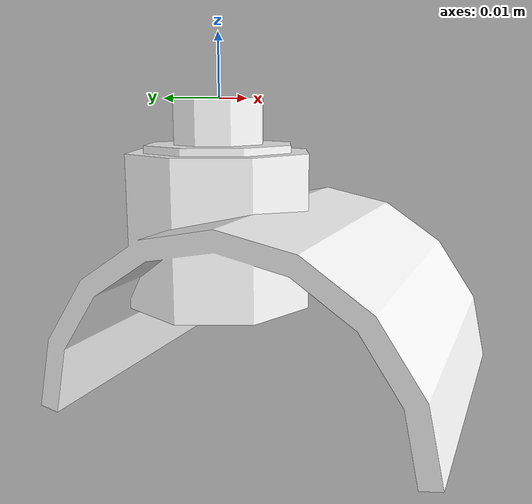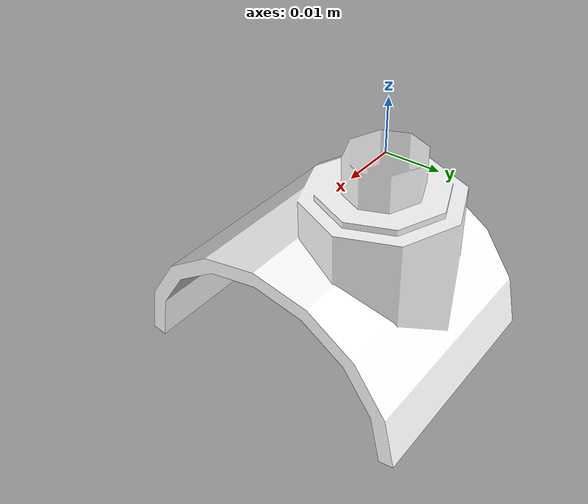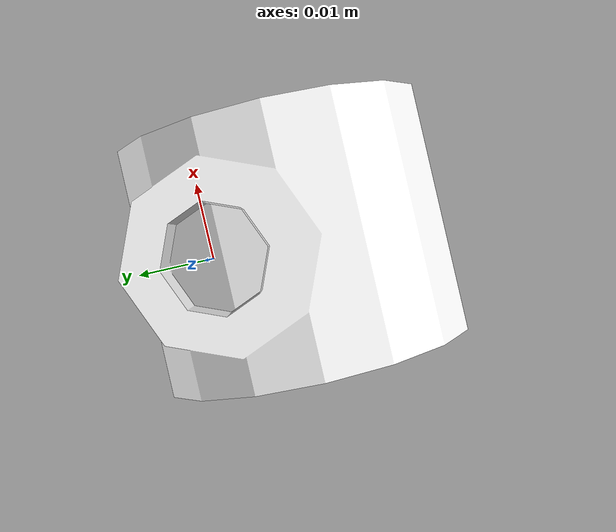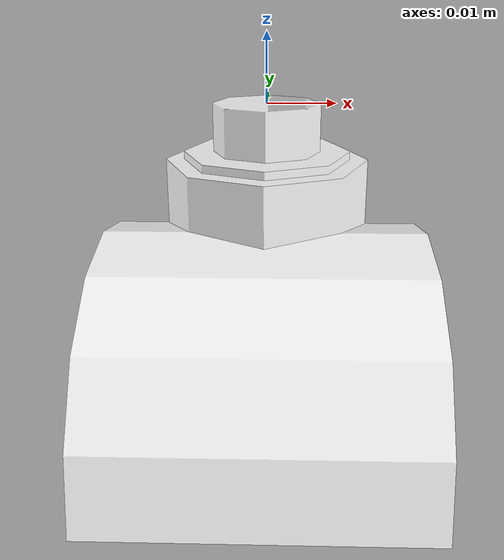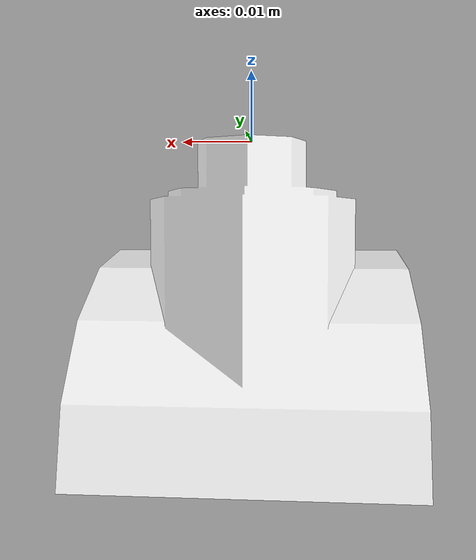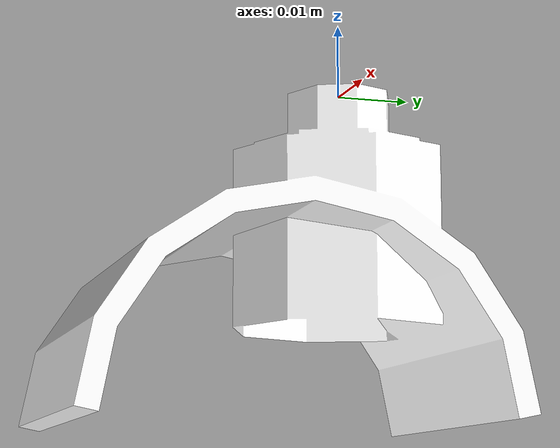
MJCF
<mujoco>
  <compiler angle="radian" assetdir="assets" autolimits="true"/>

  <asset>

    <!-- Textures -->
    <texture type="2d" colorspace="sRGB" name="LunK" file="LunK.png"/>

    <!-- Materials -->
    <material name="Material.001" rgba="1 1 1 1" reflectance="0.5" metallic="0.0" roughness="0.5">
      <layer texture="LunK" role="rgb"/>
    </material>

    <!-- Visual meshes -->
    <mesh class="visual" name="V_table_LunK" file="V_table_LunK.obj"/>

    <!-- Collision meshes -->
  </asset>

  <default>
      <default class="visual">
        <geom type="mesh" contype="0" conaffinity="0" group="2" density="0"/>
      </default>
  </default>

  <worldbody>

    <body name="B_table_LunK" pos="0.0 0.0 0.0" quat="1.0 0.0 0.0 0.0">
      <geom class="visual" mesh="V_table_LunK" pos="0.0 0.0 0.0" quat="1.0 0.0 0.0 0.0" material="Material.001"/>
    </body>
  </worldbody>
</mujoco>
